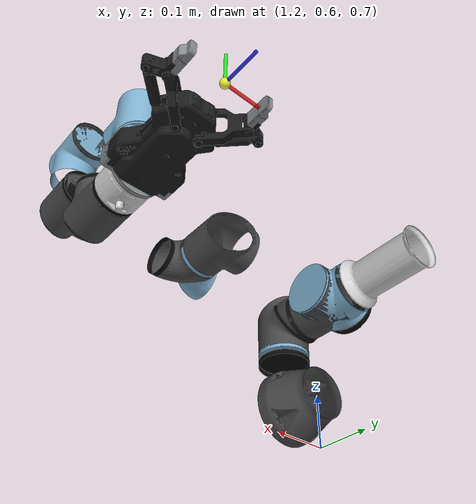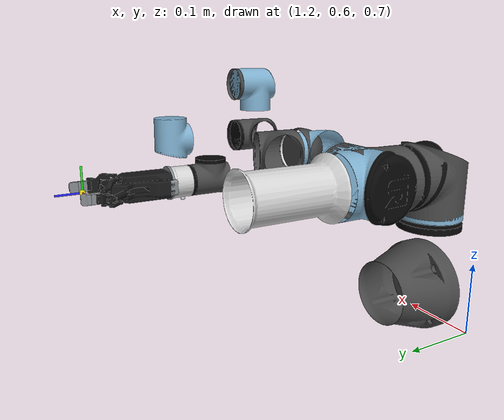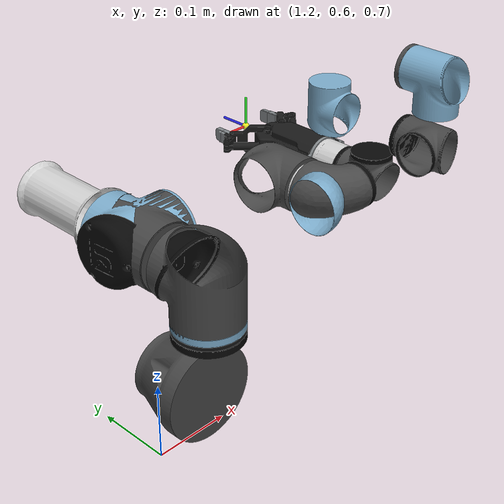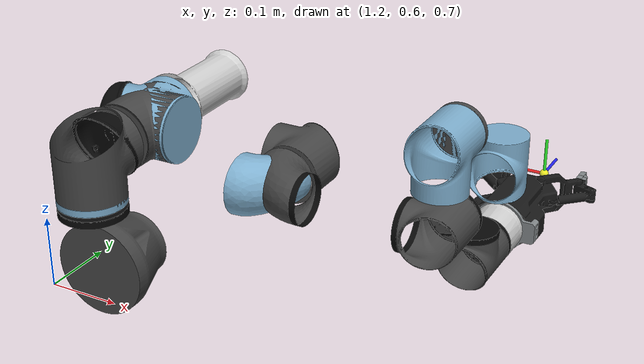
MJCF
<mujoco model="ur3e_ag95">
  <compiler angle="radian" meshdir="." autolimits="true"/>

  <option integrator="implicitfast" impratio="10"/>

  <default>
    <!-- UR3E默认设置 -->
    <default class="ur3e">
      <material specular="0.5" shininess="0.25"/>
      <joint axis="0 1 0" range="-6.28319 6.28319" armature="0.1"/>
      <general gaintype="fixed" biastype="affine" ctrlrange="-6.2831 6.2831" gainprm="1000" biasprm="0 -1000 -200"/>
      <default class="size2">
        <general forcerange="-54 54"/>
      </default>
      <default class="size1">
        <default class="size1_limited">
          <joint range="-3.1415 3.1415"/>
          <general gainprm="500" biasprm="0 -500 -100" ctrlrange="-3.1415 3.1415" forcerange="-28 28"/>
        </default>
      </default>
      <default class="size0">
        <general gainprm="250" biasprm="0 -250 -50" forcerange="-9 9"/>
      </default>
      <default class="visual">
        <geom type="mesh" contype="0" conaffinity="0" group="2"/>
      </default>
      <default class="collision">
        <geom type="capsule" group="3"/>
        <default class="eef_collision">
          <geom type="cylinder"/>
        </default>
      </default>
      <site size="0.001" rgba="0.5 0.5 0.5 0.3" group="4"/>
    </default>

    <!-- AG95默认设置 -->
    <default class="ag95">
      <joint range="0 0.943"/>
      <general
        dyntype="none" gaintype="fixed"
        biastype="affine" dynprm="1 0 0"
        gainprm="10 0 0" biasprm="0 -10 -0.1"
        forcerange="-5 5" ctrlrange="0 0.943"
      />
      <default class="visual2">
        <geom group="2" type="mesh" contype="0" conaffinity="0" density="0"/>
      </default>
      <default class="collision2">
        <geom group="3" type="mesh" density="2700"/>
        <default class="pad_box_0">
          <geom solimp="0.95 0.99 0.001" solref="0.004 1" priority="1" rgba="0.45 0.45 0.45 1"/>
        </default>
        <default class="pad_box_1">
          <geom solimp="0.95 0.99 0.001" solref="0.004 1" priority="1" rgba="0.55 0.55 0.55 1"/>
        </default>
        <default class="sphere_collision">
          <geom type="sphere" size="0.0006" rgba="1 0 0 1" group="3" solimp="0.95 0.99 0.001" solref="0.004 1" priority="1" mass="1e-6"/>
        </default>
      </default>
    </default>
  </default>

  <asset>
    <!-- UR3E材质 -->
    <material class="ur3e" name="urblack" rgba="0.033 0.033 0.033 1"/>
    <material class="ur3e" name="jointgray" rgba="0.278 0.278 0.278 1"/>
    <material class="ur3e" name="linkgray" rgba="0.82 0.82 0.82 1"/>
    <material class="ur3e" name="urblue" rgba="0.49 0.678 0.8 1"/>

    <!-- AG95材质 -->
    <material name="grey" specular="0.5" shininess="0.25" rgba="0.51764705882 0.53764705882 0.54764705882 1"/>
    <material name="black" specular="0.5" shininess="0.25" rgba="0.1 0.1 0.1 1"/>

    <!-- UR3E网格 -->
    <mesh file="../ur3e/assets/base_0.obj"/>
    <mesh file="../ur3e/assets/base_1.obj"/>
    <mesh file="../ur3e/assets/shoulder_0.obj"/>
    <mesh file="../ur3e/assets/shoulder_1.obj"/>
    <mesh file="../ur3e/assets/shoulder_2.obj"/>
    <mesh file="../ur3e/assets/upperarm_0.obj"/>
    <mesh file="../ur3e/assets/upperarm_1.obj"/>
    <mesh file="../ur3e/assets/upperarm_2.obj"/>
    <mesh file="../ur3e/assets/upperarm_3.obj"/>
    <mesh file="../ur3e/assets/forearm_0.obj"/>
    <mesh file="../ur3e/assets/forearm_1.obj"/>
    <mesh file="../ur3e/assets/forearm_2.obj"/>
    <mesh file="../ur3e/assets/forearm_3.obj"/>
    <mesh file="../ur3e/assets/wrist1_0.obj"/>
    <mesh file="../ur3e/assets/wrist1_1.obj"/>
    <mesh file="../ur3e/assets/wrist1_2.obj"/>
    <mesh file="../ur3e/assets/wrist2_0.obj"/>
    <mesh file="../ur3e/assets/wrist2_1.obj"/>
    <mesh file="../ur3e/assets/wrist2_2.obj"/>
    <mesh file="../ur3e/assets/wrist3.obj"/>

    <!-- AG95网格 -->
    <mesh name="base_link" file="../ag95/meshes/base_link.stl" scale="0.001 0.001 0.001"/>
    <mesh name="gripper_body" file="../ag95/meshes/gripper_body.stl" scale="0.001 0.001 0.001"/>
    <mesh name="outer_knuckle" file="../ag95/meshes/outer_knuckle.stl" scale="0.001 0.001 0.001"/>
    <mesh name="inner_knuckle" file="../ag95/meshes/inner_knuckle.stl" scale="0.001 0.001 0.001"/>
    <mesh name="finger" file="../ag95/meshes/finger.stl" scale="0.001 0.001 0.001"/>
    <mesh name="finger_pad_0" file="../ag95/meshes/finger_pad_0.stl" scale="1 1 1"/>
    <mesh name="finger_pad_1" file="../ag95/meshes/finger_pad_1.stl" scale="1 1 1"/>
  </asset>

  <worldbody>
    <light name="spotlight" mode="targetbodycom" target="wrist_2_link" pos="0 -1 2"/>
    <body name="ur3e_base" pos="1.28 0.6 0.745" quat="1 0 0 0" childclass="ur3e">
      <inertial mass="2.0" pos="0 0 0" diaginertia="0.0030531654454 0.0030531654454 0.005625"/>
      <geom mesh="base_0" material="urblack" class="visual"/>
      <geom mesh="base_1" material="jointgray" class="visual"/>

      <body name="shoulder_link" pos="0 0 0.163">
        <inertial mass="2.0" pos="0 0 0" diaginertia="0.008093163429399999 0.008093163429399999 0.005625"/>
        <joint name="shoulder_pan_joint" class="size2" axis="0 0 1"/>
        <geom mesh="shoulder_0" material="urblue" class="visual"/>
        <geom mesh="shoulder_1" material="urblack" class="visual"/>
        <geom mesh="shoulder_2" material="jointgray" class="visual"/>
        <geom class="collision" size="0.05 0.05" pos="0 0 -0.04"/>

        <body name="upper_arm_link" pos="0 0.12 0" quat="1 0 1 0">
          <inertial mass="3.42" pos="0 0 0.121825" diaginertia="0.021728483221103233 0.021728483221103233 0.00961875"/>
          <joint name="shoulder_lift_joint" class="size2"/>
          <geom mesh="upperarm_0" material="urblack" class="visual"/>
          <geom mesh="upperarm_1" material="urblue" class="visual"/>
          <geom mesh="upperarm_2" material="jointgray" class="visual"/>
          <geom mesh="upperarm_3" material="linkgray" class="visual"/>
          <geom class="collision" pos="0 -0.04 0" quat="1 1 0 0" size="0.05 0.05"/>
          <geom class="collision" size="0.04 0.1" pos="0 0 0.1"/>

          <body name="forearm_link" pos="0 -0.093 0.24355">
            <inertial mass="1.26" pos="0 0 0.1066" diaginertia="0.0065445675821719194 0.0065445675821719194 0.00354375"/>
            <joint name="elbow_joint" class="size1_limited"/>
            <geom mesh="forearm_0" material="urblue" class="visual"/>
            <geom mesh="forearm_1" material="linkgray" class="visual"/>
            <geom mesh="forearm_2" material="urblack" class="visual"/>
            <geom mesh="forearm_3" material="jointgray" class="visual"/>
            <geom class="collision" pos="0 0.06 0" quat="1 1 0 0" size="0.04 0.052"/>
            <geom class="collision" size="0.03 0.1" pos="0 0 0.1"/>

            <body name="wrist_1_link" pos="0 0 0.2132" quat="1 0 1 0">
              <inertial mass="0.8" pos="0 0.104 0" diaginertia="0.002084999166 0.002084999166 0.00225"/>
              <joint name="wrist_1_joint" class="size0"/>
              <geom mesh="wrist1_0" material="urblack" class="visual"/>
              <geom mesh="wrist1_1" material="urblue" class="visual"/>
              <geom mesh="wrist1_2" material="jointgray" class="visual"/>
              <geom class="collision" pos="0 0.03 0" quat="1 1 0 0" size="0.032 0.045"/>

              <body name="wrist_2_link" pos="0 0.104 0">
                <inertial mass="0.8" pos="0 0 0.1" diaginertia="0.002084999166 0.002084999166 0.00225"/>
                <joint name="wrist_2_joint" axis="0 0 1" class="size0"/>
                <geom mesh="wrist2_0" material="urblue" class="visual"/>
                <geom mesh="wrist2_1" material="urblack" class="visual"/>
                <geom mesh="wrist2_2" material="jointgray" class="visual"/>
                <geom class="collision" size="0.032 0.045" pos="0 0 0.025"/>
                <geom class="collision" pos="0 0.015 0.085" quat="1 1 0 0" size="0.032 0.035"/>

                <body name="wrist_3_link" pos="0 0 0.08535">
                  <inertial mass="0.35" pos="0 0.0771683 0" quat="1 0 0 1"
                    diaginertia="0.00013626661215999998 0.00013626661215999998 0.0001792"/>
                  <joint name="wrist_3_joint" class="size0"/>
                  <geom material="linkgray" mesh="wrist3" class="visual"/>

                  <!-- 腕部手眼相机（安装在 wrist_3_link 上） -->

                    <!-- 蓝色小盒：相机机身 -->
                    <!-- 青色细线：视线方向（朝指尖方向 (0,+Y,-Z)） -->
                    <!-- 红色小点：光心 -->

                  <!-- AG95机械手安装在UR3E末端 -->
                  <body name="ag95_base" pos="0 0.09 0" euler="-1.57 0 0" childclass="ag95">
                    <geom class="collision2" mesh="base_link"/>
                    <geom class="visual2" mesh="base_link" material="grey"/>
                    <geom class="collision2" mesh="gripper_body"/>
                    <geom class="visual2" mesh="gripper_body" material="black"/>

                    <!-- TCP: 两指抓取中心，z=0.17 沿夹爪进入方向 -->
                    <body name="gripper_tcp" pos="0 0 0.17">
                      <site name="gripper_tcp_site" pos="0 0 0" size="0.006" rgba="1 1 0 0.8" group="2"/>
                      <!-- 可视化 TCP 坐标系 (长度设为 5cm，粗细为 2mm) -->
                      <!-- X 轴 (红色) -->
                      <geom name="tcp_x" type="cylinder" fromto="0 0 0  0.05 0 0" size="0.002" rgba="1 0 0 0.8" contype="0" conaffinity="0" group="2"/>
                      <!-- Y 轴 (绿色) -->
                      <geom name="tcp_y" type="cylinder" fromto="0 0 0  0 0.05 0" size="0.002" rgba="0 1 0 0.8" contype="0" conaffinity="0" group="2"/>
                      <!-- Z 轴 (蓝色) -->
                      <geom name="tcp_z" type="cylinder" fromto="0 0 0  0 0 0.05" size="0.002" rgba="0 0 1 0.8" contype="0" conaffinity="0" group="2"/>
                    </body>

                    <!-- 左侧机械手结构 -->
                    <body name="left_inner_knuckle" pos="0.016 -0.0254 0.10586" quat="0.922844 0 0.385173 0">
                      <joint name="left_inner_knuckle_joint" pos="0 0 0" axis="0 -1 0"/>
                      <geom class="collision2" pos="-0.016 0.0254 -0.10586" mesh="inner_knuckle"/>
                      <geom class="visual2" pos="-0.016 0.0254 -0.10586" mesh="inner_knuckle" material="black"/>
                    </body>

                    <body name="left_outer_knuckle" pos="0.036673 -0.00875 0.098336" quat="0.924908 0 -0.380191 0">
                      <joint name="left_outer_knuckle_joint" pos="0 0 0" axis="0 -1 0"/>
                      <geom class="collision2" pos="-0.036673 0.00875 -0.098336" mesh="outer_knuckle"/>
                      <geom class="visual2" pos="-0.036673 0.00875 -0.098336" mesh="outer_knuckle" material="black"/>

                      <body name="left_finger" pos="0.055 0 0" quat="0.924908 0 0.380191 0">
                        <joint name="left_finger_joint" pos="0 0 0" axis="0 1 0"/>
                        <geom class="collision2" pos="-0.091673 0.00875 -0.098336" mesh="finger"/>
                        <geom class="visual2" pos="-0.091673 0.00875 -0.098336" mesh="finger" material="black"/>
                        <geom class="pad_box_0" pos="-0.091673 0.00875 -0.098336" mesh="finger_pad_0"/>
                        <geom class="visual2" pos="-0.091673 0.00875 -0.098336" mesh="finger_pad_0" material="grey"/>
                        <geom class="pad_box_1" pos="-0.091673 0.00875 -0.098336" mesh="finger_pad_1"/>
                        <geom class="visual2" pos="-0.091673 0.00875 -0.098336" mesh="finger_pad_1" material="grey"/>

                        <!-- 接触点 -->
                        <geom pos="-0.028 0 0.02" class="sphere_collision"/>
                        <geom pos="-0.028 0.0175 0.02" class="sphere_collision"/>
                        <geom pos="-0.028 0 0.032" class="sphere_collision"/>
                        <geom pos="-0.028 0.0175 0.032" class="sphere_collision"/>
                        <geom pos="-0.028 0 0.044" class="sphere_collision"/>
                        <geom pos="-0.028 0.0175 0.044" class="sphere_collision"/>
                      </body>
                    </body>

                    <!-- 右侧机械手结构 -->
                    <body name="right_inner_knuckle" pos="-0.016 0.0254 0.10586" quat="0 0.385173 0 -0.922844">
                      <joint name="right_inner_knuckle_joint" pos="0 0 0" axis="0 -1 0"/>
                      <geom class="collision2" pos="-0.016 0.0254 -0.10586" mesh="inner_knuckle"/>
                      <geom class="visual2" pos="-0.016 0.0254 -0.10586" mesh="inner_knuckle" material="black"/>
                    </body>

                    <body name="right_outer_knuckle" pos="-0.036673 0.00875 0.098336" quat="0 0.380191 0 0.924908">
                      <joint name="right_outer_knuckle_joint" pos="0 0 0" axis="0 -1 0"/>
                      <geom class="collision2" pos="-0.036673 0.00875 -0.098336" mesh="outer_knuckle"/>
                      <geom class="visual2" pos="-0.036673 0.00875 -0.098336" mesh="outer_knuckle" material="black"/>

                      <body name="right_finger" pos="0.055 0 0" quat="0.924908 0 0.380191 0">
                        <joint name="right_finger_joint" pos="0 0 0" axis="0 1 0"/>
                        <geom class="collision2" pos="-0.091673 0.00875 -0.098336" mesh="finger"/>
                        <geom class="visual2" pos="-0.091673 0.00875 -0.098336" mesh="finger" material="black"/>
                        <geom class="pad_box_0" pos="-0.091673 0.00875 -0.098336" mesh="finger_pad_0"/>
                        <geom class="visual2" pos="-0.091673 0.00875 -0.098336" mesh="finger_pad_0" material="grey"/>
                        <geom class="pad_box_1" pos="-0.091673 0.00875 -0.098336" mesh="finger_pad_1"/>
                        <geom class="visual2" pos="-0.091673 0.00875 -0.098336" mesh="finger_pad_1" material="grey"/>

                        <!-- 接触点 -->
                        <geom pos="-0.028 0 0.02" class="sphere_collision"/>
                        <geom pos="-0.028 0.0175 0.02" class="sphere_collision"/>
                        <geom pos="-0.028 0 0.032" class="sphere_collision"/>
                        <geom pos="-0.028 0.0175 0.032" class="sphere_collision"/>
                        <geom pos="-0.028 0 0.044" class="sphere_collision"/>
                        <geom pos="-0.028 0.0175 0.044" class="sphere_collision"/>
                      </body>
                    </body>
                  </body>
                </body>
              </body>
            </body>
          </body>
        </body>
      </body>
    </body>
  </worldbody>

  <!-- 碰撞排除配置 -->
  <contact>
    <!-- UR3E内部碰撞排除 -->

    <!-- AG95内部碰撞排除 -->
    <exclude body1="ag95_base" body2="left_inner_knuckle"/>
    <exclude body1="ag95_base" body2="left_outer_knuckle"/>
    <exclude body1="ag95_base" body2="right_inner_knuckle"/>
    <exclude body1="ag95_base" body2="right_outer_knuckle"/>
    <exclude body1="ag95_base" body2="left_finger"/>
    <exclude body1="ag95_base" body2="right_finger"/>
    <exclude body1="left_inner_knuckle" body2="left_finger"/>
    <exclude body1="right_inner_knuckle" body2="right_finger"/>

    <!-- 跨系统碰撞排除 -->
    <exclude body1="wrist_3_link" body2="ag95_base"/>
    <exclude body1="wrist_3_link" body2="left_inner_knuckle"/>
    <exclude body1="wrist_3_link" body2="right_inner_knuckle"/>
    <exclude body1="wrist_3_link" body2="left_outer_knuckle"/>
    <exclude body1="wrist_3_link" body2="right_outer_knuckle"/>
  </contact>

  <!-- AG95腱传动系统 -->
  <tendon>
    <fixed name="split">
      <joint joint="left_outer_knuckle_joint" coef="0.5"/>
      <joint joint="right_outer_knuckle_joint" coef="0.5"/>
    </fixed>
  </tendon>

  <!-- AG95等式约束 -->
  <equality>
    <connect anchor="-0.020673 0 0.007524" body1="left_finger" body2="left_inner_knuckle" solimp="0.95 0.99 0.001" solref="0.005 1"/>
    <connect anchor="-0.020673 0 0.007524" body1="right_finger" body2="right_inner_knuckle" solimp="0.95 0.99 0.001" solref="0.005 1"/>
    <joint joint1="left_outer_knuckle_joint" joint2="right_outer_knuckle_joint" polycoef="0 1 0 0 0" solimp="0.95 0.99 0.001" solref="0.005 1"/>
  </equality>

  <!-- 驱动器配置 -->
  <actuator>
    <!-- UR3E驱动器 -->
    <general class="size2" name="shoulder_pan" joint="shoulder_pan_joint"/>
    <general class="size2" name="shoulder_lift" joint="shoulder_lift_joint"/>
    <general class="size1_limited" name="elbow" joint="elbow_joint"/>
    <general class="size0" name="wrist_1" joint="wrist_1_joint"/>
    <general class="size0" name="wrist_2" joint="wrist_2_joint"/>
    <general class="size0" name="wrist_3" joint="wrist_3_joint"/>

    <!-- AG95驱动器 -->
    <general name="fingers_actuator" tendon="split" class="ag95"/>
  </actuator>

  <keyframe>
    <key name="home_pose" qpos="0 -1.5708 1.5708 -1.5708 -1.5708 0  0 0 0 0 0 0" />
  </keyframe>
</mujoco>
